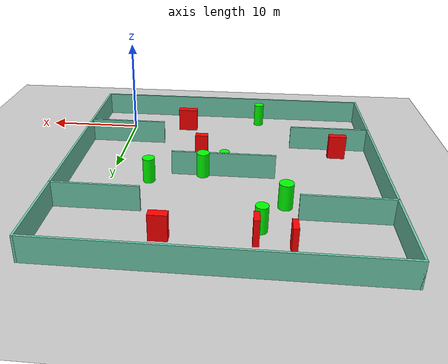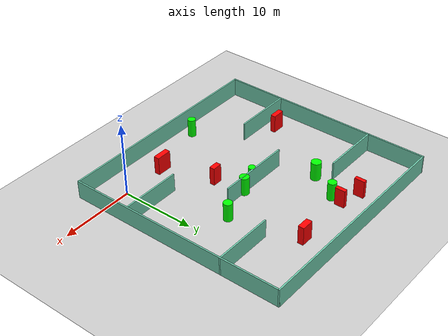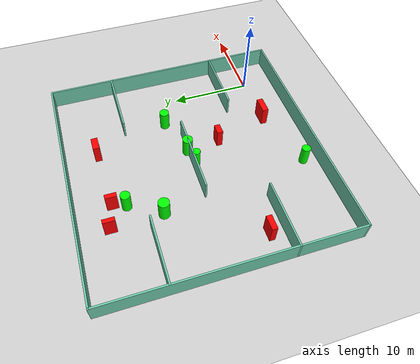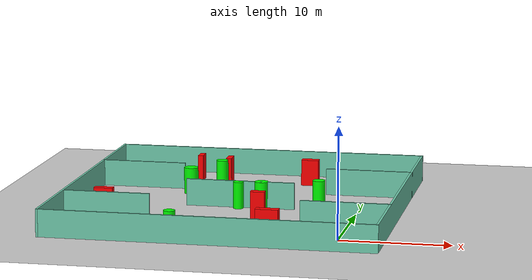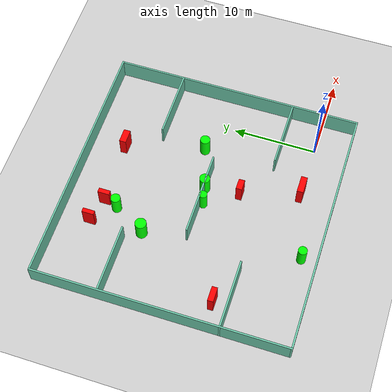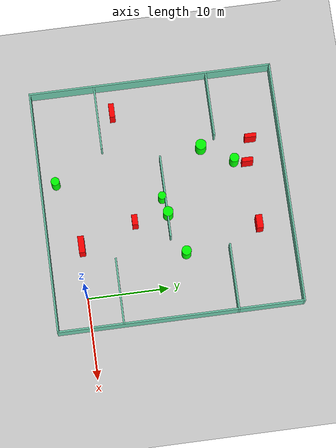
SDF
<sdf version="1.7">
 <world name="default">
  <light name="sun" type="directional">
   <pose>0 0 10 0 -0 0</pose>
   <diffuse>0.8 0.8 0.8 1</diffuse>
   <specular>0.2 0.2 0.2 1</specular>
   <attenuation>
    <range>1000</range>
    <constant>0.9</constant>
    <linear>0.01</linear>
    <quadratic>0.001</quadratic>
   </attenuation>
   <direction>-0.5 0.1 -0.9</direction>
   <spot><inner_angle>0</inner_angle><outer_angle>0</outer_angle><falloff>0</falloff></spot>
  </light>
  <model name="ground_plane">
   <static>1</static>
   <link name="link">
    <collision name="collision">
     <geometry><plane><normal>0 0 1</normal><size>100 100</size></plane></geometry>
     <surface>
      <contact><collide_bitmask>65535</collide_bitmask></contact>
      <friction><ode><mu>100</mu><mu2>50</mu2></ode></friction>
     </surface>
    </collision>
    <visual name="visual">
     <cast_shadows>0</cast_shadows>
     <geometry><plane><normal>0 0 1</normal><size>100 100</size></plane></geometry>
     <material>
      <script><uri>file://media/materials/scripts/gazebo.material</uri><name>Gazebo/Grey</name></script>
     </material>
    </visual>
   </link>
  </model>
  <gravity>0 0 -9.8</gravity>
  <magnetic_field>6e-06 2.3e-05 -4.2e-05</magnetic_field>
  <atmosphere type="adiabatic"/>
  <physics type="ode">
   <max_step_size>0.001</max_step_size>
   <real_time_factor>1</real_time_factor>
   <real_time_update_rate>1000</real_time_update_rate>
  </physics>
  <scene><ambient>0.4 0.4 0.4 1</ambient><background>0.7 0.7 0.7 1</background><shadows>1</shadows></scene>
  <spherical_coordinates>
   <surface_model>EARTH_WGS84</surface_model>
   <latitude_deg>0</latitude_deg>
   <longitude_deg>0</longitude_deg>
   <elevation>0</elevation>
   <heading_deg>0</heading_deg>
  </spherical_coordinates>
  <model name="my_base_walls">
   <link name="Wall_10">
    <collision name="Wall_10_Collision">
     <geometry><box><size>8.2 0.2 2.5</size></box></geometry>
     <pose>0 0 1.25 0 -0 0</pose>
    </collision>
    <visual name="Wall_10_Visual">
     <pose>0 0 1.25 0 -0 0</pose>
     <geometry><box><size>8.2 0.2 2.5</size></box></geometry>
     <material>
      <script><uri>file://media/materials/scripts/gazebo.material</uri><name>Gazebo/Grey</name></script>
      <ambient>0.435294 0.796078 0.67451 1</ambient>
     </material>
     <meta><layer>0</layer></meta>
    </visual>
    <pose>-11 -7 0 0 -0 0</pose>
   </link>
   <link name="Wall_12">
    <collision name="Wall_12_Collision">
     <geometry><box><size>8.2 0.2 2.5</size></box></geometry>
     <pose>0 0 1.25 0 -0 0</pose>
    </collision>
    <visual name="Wall_12_Visual">
     <pose>0 0 1.25 0 -0 0</pose>
     <geometry><box><size>8.2 0.2 2.5</size></box></geometry>
     <material>
      <script><uri>file://media/materials/scripts/gazebo.material</uri><name>Gazebo/Grey</name></script>
      <ambient>0.435294 0.796078 0.67451 1</ambient>
     </material>
     <meta><layer>0</layer></meta>
    </visual>
    <pose>-11 7 0 0 -0 0</pose>
   </link>
   <link name="Wall_14">
    <collision name="Wall_14_Collision">
     <geometry><box><size>8.2 0.2 2.5</size></box></geometry>
     <pose>0 0 1.25 0 -0 0</pose>
    </collision>
    <visual name="Wall_14_Visual">
     <pose>0 0 1.25 0 -0 0</pose>
     <geometry><box><size>8.2 0.2 2.5</size></box></geometry>
     <material>
      <script><uri>file://media/materials/scripts/gazebo.material</uri><name>Gazebo/Grey</name></script>
      <ambient>0.435294 0.796078 0.67451 1</ambient>
     </material>
     <meta><layer>0</layer></meta>
    </visual>
    <pose>11 7 0 0 -0 3.14159</pose>
   </link>
   <link name="Wall_16">
    <collision name="Wall_16_Collision">
     <geometry><box><size>10.2 0.2 2.5</size></box></geometry>
     <pose>0 0 1.25 0 -0 0</pose>
    </collision>
    <visual name="Wall_16_Visual">
     <pose>0 0 1.25 0 -0 0</pose>
     <geometry><box><size>10.2 0.2 2.5</size></box></geometry>
     <material>
      <script><uri>file://media/materials/scripts/gazebo.material</uri><name>Gazebo/Grey</name></script>
      <ambient>0.435294 0.796078 0.67451 1</ambient>
     </material>
     <meta><layer>0</layer></meta>
    </visual>
    <pose>0 0 0 0 -0 3.14159</pose>
   </link>
   <link name="Wall_2">
    <collision name="Wall_2_Collision">
     <geometry><box><size>30.2 0.2 2.5</size></box></geometry>
     <pose>0 0 1.25 0 -0 0</pose>
    </collision>
    <visual name="Wall_2_Visual">
     <pose>0 0 1.25 0 -0 0</pose>
     <geometry><box><size>30.2 0.2 2.5</size></box></geometry>
     <material>
      <script><uri>file://media/materials/scripts/gazebo.material</uri><name>Gazebo/Grey</name></script>
      <ambient>0.435294 0.796078 0.67451 1</ambient>
     </material>
     <meta><layer>0</layer></meta>
    </visual>
    <pose>0 -15 0 0 -0 3.14159</pose>
   </link>
   <link name="Wall_3">
    <collision name="Wall_3_Collision">
     <geometry><box><size>30.2 0.2 2.5</size></box></geometry>
     <pose>0 0 1.25 0 -0 0</pose>
    </collision>
    <visual name="Wall_3_Visual">
     <pose>0 0 1.25 0 -0 0</pose>
     <geometry><box><size>30.2 0.2 2.5</size></box></geometry>
     <material>
      <script><uri>file://media/materials/scripts/gazebo.material</uri><name>Gazebo/Grey</name></script>
      <ambient>0.435294 0.796078 0.67451 1</ambient>
     </material>
     <meta><layer>0</layer></meta>
    </visual>
    <pose>-15 0 0 0 -0 1.5708</pose>
   </link>
   <link name="Wall_4">
    <collision name="Wall_4_Collision">
     <geometry><box><size>30.2 0.2 2.5</size></box></geometry>
     <pose>0 0 1.25 0 -0 0</pose>
    </collision>
    <visual name="Wall_4_Visual">
     <pose>0 0 1.25 0 -0 0</pose>
     <geometry><box><size>30.2 0.2 2.5</size></box></geometry>
     <material>
      <script><uri>file://media/materials/scripts/gazebo.material</uri><name>Gazebo/Grey</name></script>
      <ambient>0.435294 0.796078 0.67451 1</ambient>
     </material>
     <meta><layer>0</layer></meta>
    </visual>
    <pose>0 15 0 0 -0 0</pose>
   </link>
   <link name="Wall_6">
    <collision name="Wall_6_Collision">
     <geometry><box><size>30.2 0.2 2.5</size></box></geometry>
     <pose>0 0 1.25 0 -0 0</pose>
    </collision>
    <visual name="Wall_6_Visual">
     <pose>0 0 1.25 0 -0 0</pose>
     <geometry><box><size>30.2 0.2 2.5</size></box></geometry>
     <material>
      <script><uri>file://media/materials/scripts/gazebo.material</uri><name>Gazebo/Grey</name></script>
      <ambient>0.435294 0.796078 0.67451 1</ambient>
     </material>
     <meta><layer>0</layer></meta>
    </visual>
    <pose>15 0 0 0 -0 1.5708</pose>
   </link>
   <link name="Wall_8">
    <collision name="Wall_8_Collision">
     <geometry><box><size>8.2 0.2 2.5</size></box></geometry>
     <pose>0 0 1.25 0 -0 0</pose>
    </collision>
    <visual name="Wall_8_Visual">
     <pose>0 0 1.25 0 -0 0</pose>
     <geometry><box><size>8.2 0.2 2.5</size></box></geometry>
     <material>
      <script><uri>file://media/materials/scripts/gazebo.material</uri><name>Gazebo/Grey</name></script>
      <ambient>0.435294 0.796078 0.67451 1</ambient>
     </material>
     <meta><layer>0</layer></meta>
    </visual>
    <pose>11 -7 0 0 -0 3.14159</pose>
   </link>
   <static>1</static>
   <pose>-11 11 0 0 -0 0</pose>
  </model>
  <model name="cylinder1">
   <static>1</static>
   <link name="link">
    <inertial>
     <mass>1</mass>
     <inertia><ixx>0.5</ixx><ixy>0</ixy><ixz>0</ixz><iyy>0.5</iyy><iyz>0</iyz><izz>1</izz></inertia>
    </inertial>
    <collision name="collision">
     <geometry><cylinder><radius>0.575224594812338</radius><length>2.5</length></cylinder></geometry>
    </collision>
    <visual name="visual">
     <geometry><cylinder><radius>0.575224594812338</radius><length>2.5</length></cylinder></geometry>
     <material>
      <ambient>0 1 0 1</ambient>
      <diffuse>0 1 0 1</diffuse>
      <specular>0.1 0.1 0.1 1</specular>
      <emissive>0 0 0 0</emissive>
     </material>
    </visual>
   </link>
   <pose>-14.682236259241963 20.05167976713942 1.25 0 0 0</pose>
  </model>
  <model name="cylinder2">
   <static>1</static>
   <link name="link">
    <inertial>
     <mass>1</mass>
     <inertia><ixx>0.5</ixx><ixy>0</ixy><ixz>0</ixz><iyy>0.5</iyy><iyz>0</iyz><izz>1</izz></inertia>
    </inertial>
    <collision name="collision">
     <geometry><cylinder><radius>0.5895042755655906</radius><length>2.5</length></cylinder></geometry>
    </collision>
    <visual name="visual">
     <geometry><cylinder><radius>0.5895042755655906</radius><length>2.5</length></cylinder></geometry>
     <material>
      <ambient>0 1 0 1</ambient>
      <diffuse>0 1 0 1</diffuse>
      <specular>0.1 0.1 0.1 1</specular>
      <emissive>0 0 0 0</emissive>
     </material>
    </visual>
   </link>
   <pose>-3.9001796217546314 12.668049051392657 1.25 0 0 0</pose>
  </model>
  <model name="cylinder3">
   <static>1</static>
   <link name="link">
    <inertial>
     <mass>1</mass>
     <inertia><ixx>0.5</ixx><ixy>0</ixy><ixz>0</ixz><iyy>0.5</iyy><iyz>0</iyz><izz>1</izz></inertia>
    </inertial>
    <collision name="collision">
     <geometry><cylinder><radius>0.5255161605612542</radius><length>2.5</length></cylinder></geometry>
    </collision>
    <visual name="visual">
     <geometry><cylinder><radius>0.5255161605612542</radius><length>2.5</length></cylinder></geometry>
     <material>
      <ambient>0 1 0 1</ambient>
      <diffuse>0 1 0 1</diffuse>
      <specular>0.1 0.1 0.1 1</specular>
      <emissive>0 0 0 0</emissive>
     </material>
    </visual>
   </link>
   <pose>-14.550112226460778 -2.158215660527604 1.25 0 0 0</pose>
  </model>
  <model name="cylinder4">
   <static>1</static>
   <link name="link">
    <inertial>
     <mass>1</mass>
     <inertia><ixx>0.5</ixx><ixy>0</ixy><ixz>0</ixz><iyy>0.5</iyy><iyz>0</iyz><izz>1</izz></inertia>
    </inertial>
    <collision name="collision">
     <geometry><cylinder><radius>0.626233337665661</radius><length>2.5</length></cylinder></geometry>
    </collision>
    <visual name="visual">
     <geometry><cylinder><radius>0.626233337665661</radius><length>2.5</length></cylinder></geometry>
     <material>
      <ambient>0 1 0 1</ambient>
      <diffuse>0 1 0 1</diffuse>
      <specular>0.1 0.1 0.1 1</specular>
      <emissive>0 0 0 0</emissive>
     </material>
    </visual>
   </link>
   <pose>-9.02037001293056 11.080892219203866 1.25 0 0 0</pose>
  </model>
  <model name="cylinder5">
   <static>1</static>
   <link name="link">
    <inertial>
     <mass>1</mass>
     <inertia><ixx>0.5</ixx><ixy>0</ixy><ixz>0</ixz><iyy>0.5</iyy><iyz>0</iyz><izz>1</izz></inertia>
    </inertial>
    <collision name="collision">
     <geometry><cylinder><radius>0.6713197860527619</radius><length>2.5</length></cylinder></geometry>
    </collision>
    <visual name="visual">
     <geometry><cylinder><radius>0.6713197860527619</radius><length>2.5</length></cylinder></geometry>
     <material>
      <ambient>0 1 0 1</ambient>
      <diffuse>0 1 0 1</diffuse>
      <specular>0.1 0.1 0.1 1</specular>
      <emissive>0 0 0 0</emissive>
     </material>
    </visual>
   </link>
   <pose>-16.874789391642643 16.196722948568286 1.25 0 0 0</pose>
  </model>
  <model name="cylinder6">
   <static>1</static>
   <link name="link">
    <inertial>
     <mass>1</mass>
     <inertia><ixx>0.5</ixx><ixy>0</ixy><ixz>0</ixz><iyy>0.5</iyy><iyz>0</iyz><izz>1</izz></inertia>
    </inertial>
    <collision name="collision">
     <geometry><cylinder><radius>0.48360009763210243</radius><length>2.5</length></cylinder></geometry>
    </collision>
    <visual name="visual">
     <geometry><cylinder><radius>0.48360009763210243</radius><length>2.5</length></cylinder></geometry>
     <material>
      <ambient>0 1 0 1</ambient>
      <diffuse>0 1 0 1</diffuse>
      <specular>0.1 0.1 0.1 1</specular>
      <emissive>0 0 0 0</emissive>
     </material>
    </visual>
   </link>
   <pose>-11.098609665587707 10.61254788343409 1.25 0 0 0</pose>
  </model>
  <model name="box1">
   <static>1</static>
   <link name="link">
    <inertial>
     <mass>1</mass>
     <inertia><ixx>0.083</ixx><ixy>0</ixy><ixz>0</ixz><iyy>0.083</iyy><iyz>0</iyz><izz>0.083</izz></inertia>
    </inertial>
    <collision name="collision">
     <geometry><box><size>1.3059035170966222 0.7156601527520989 2.5</size></box></geometry>
    </collision>
    <visual name="visual">
     <geometry><box><size>1.3059035170966222 0.7156601527520989 2.5</size></box></geometry>
     <material>
      <ambient>1 0 0 1</ambient>
      <diffuse>1 0 0 1</diffuse>
      <specular>0.1 0.1 0.1 1</specular>
      <emissive>0 0 0 0</emissive>
     </material>
    </visual>
    <sensor name="my_contact" type="contact">
     <contact><collision>box_collision</collision><topic>__default_topic__</topic></contact>
    </sensor>
   </link>
   <pose>-8.520776762199748 6.905884605159262 1.25 0 0 0</pose>
  </model>
  <model name="box2">
   <static>1</static>
   <link name="link">
    <inertial>
     <mass>1</mass>
     <inertia><ixx>0.083</ixx><ixy>0</ixy><ixz>0</ixz><iyy>0.083</iyy><iyz>0</iyz><izz>0.083</izz></inertia>
    </inertial>
    <collision name="collision">
     <geometry><box><size>1.7492185618793252 0.6719623373222947 2.5</size></box></geometry>
    </collision>
    <visual name="visual">
     <geometry><box><size>1.7492185618793252 0.6719623373222947 2.5</size></box></geometry>
     <material>
      <ambient>1 0 0 1</ambient>
      <diffuse>1 0 0 1</diffuse>
      <specular>0.1 0.1 0.1 1</specular>
      <emissive>0 0 0 0</emissive>
     </material>
    </visual>
    <sensor name="my_contact" type="contact">
     <contact><collision>box_collision</collision><topic>__default_topic__</topic></contact>
    </sensor>
   </link>
   <pose>-22.642945403213847 5.827390188389522 1.25 0 0 0</pose>
  </model>
  <model name="box3">
   <static>1</static>
   <link name="link">
    <inertial>
     <mass>1</mass>
     <inertia><ixx>0.083</ixx><ixy>0</ixy><ixz>0</ixz><iyy>0.083</iyy><iyz>0</iyz><izz>0.083</izz></inertia>
    </inertial>
    <collision name="collision">
     <geometry><box><size>0.5004760607171537 1.4198193443184495 2.5</size></box></geometry>
    </collision>
    <visual name="visual">
     <geometry><box><size>0.5004760607171537 1.4198193443184495 2.5</size></box></geometry>
     <material>
      <ambient>1 0 0 1</ambient>
      <diffuse>1 0 0 1</diffuse>
      <specular>0.1 0.1 0.1 1</specular>
      <emissive>0 0 0 0</emissive>
     </material>
    </visual>
    <sensor name="my_contact" type="contact">
     <contact><collision>box_collision</collision><topic>__default_topic__</topic></contact>
    </sensor>
   </link>
   <pose>-17.2469784634306 22.39960004629342 1.25 0 0 0</pose>
  </model>
  <model name="box4">
   <static>1</static>
   <link name="link">
    <inertial>
     <mass>1</mass>
     <inertia><ixx>0.083</ixx><ixy>0</ixy><ixz>0</ixz><iyy>0.083</iyy><iyz>0</iyz><izz>0.083</izz></inertia>
    </inertial>
    <collision name="collision">
     <geometry><box><size>0.5263661632340698 1.3783487488154857 2.5</size></box></geometry>
    </collision>
    <visual name="visual">
     <geometry><box><size>0.5263661632340698 1.3783487488154857 2.5</size></box></geometry>
     <material>
      <ambient>1 0 0 1</ambient>
      <diffuse>1 0 0 1</diffuse>
      <specular>0.1 0.1 0.1 1</specular>
      <emissive>0 0 0 0</emissive>
     </material>
    </visual>
    <sensor name="my_contact" type="contact">
     <contact><collision>box_collision</collision><topic>__default_topic__</topic></contact>
    </sensor>
   </link>
   <pose>-14.251548499483532 21.612747483151516 1.25 0 0 0</pose>
  </model>
  <model name="box5">
   <static>1</static>
   <link name="link">
    <inertial>
     <mass>1</mass>
     <inertia><ixx>0.083</ixx><ixy>0</ixy><ixz>0</ixz><iyy>0.083</iyy><iyz>0</iyz><izz>0.083</izz></inertia>
    </inertial>
    <collision name="collision">
     <geometry><box><size>1.6652811006866486 0.8022124611413145 2.5</size></box></geometry>
    </collision>
    <visual name="visual">
     <geometry><box><size>1.6652811006866486 0.8022124611413145 2.5</size></box></geometry>
     <material>
      <ambient>1 0 0 1</ambient>
      <diffuse>1 0 0 1</diffuse>
      <specular>0.1 0.1 0.1 1</specular>
      <emissive>0 0 0 0</emissive>
     </material>
    </visual>
    <sensor name="my_contact" type="contact">
     <contact><collision>box_collision</collision><topic>__default_topic__</topic></contact>
    </sensor>
   </link>
   <pose>-6.341545465293915 21.969900911389153 1.25 0 0 0</pose>
  </model>
  <model name="box6">
   <static>1</static>
   <link name="link">
    <inertial>
     <mass>1</mass>
     <inertia><ixx>0.083</ixx><ixy>0</ixy><ixz>0</ixz><iyy>0.083</iyy><iyz>0</iyz><izz>0.083</izz></inertia>
    </inertial>
    <collision name="collision">
     <geometry><box><size>2.0762227024591144 0.7531467068585812 2.5</size></box></geometry>
    </collision>
    <visual name="visual">
     <geometry><box><size>2.0762227024591144 0.7531467068585812 2.5</size></box></geometry>
     <material>
      <ambient>1 0 0 1</ambient>
      <diffuse>1 0 0 1</diffuse>
      <specular>0.1 0.1 0.1 1</specular>
      <emissive>0 0 0 0</emissive>
     </material>
    </visual>
    <sensor name="my_contact" type="contact">
     <contact><collision>box_collision</collision><topic>__default_topic__</topic></contact>
    </sensor>
   </link>
   <pose>-6.318178246535917 0.08061848569214058 1.25 0 0 0</pose>
  </model>
 </world>
</sdf>
